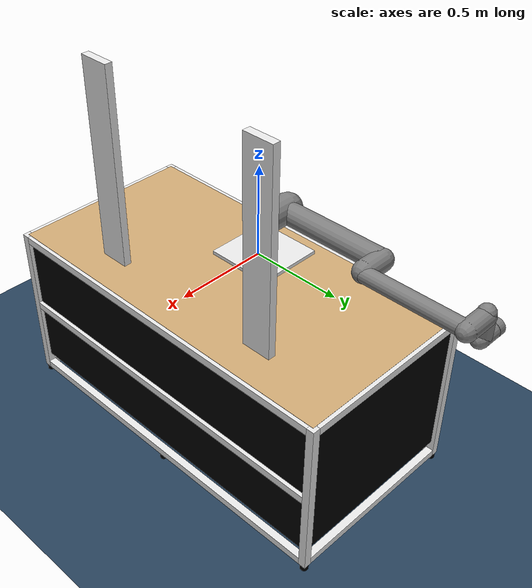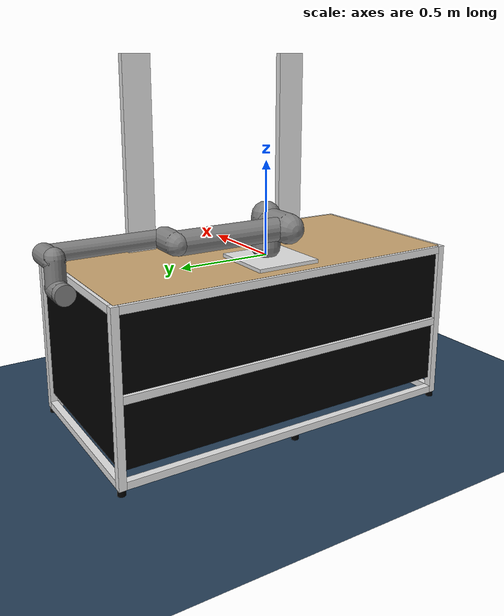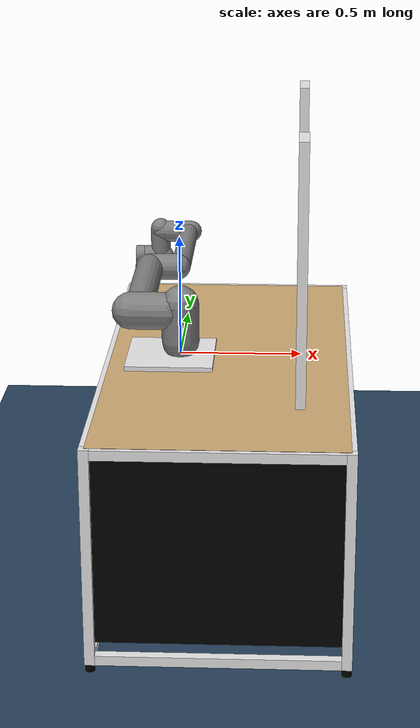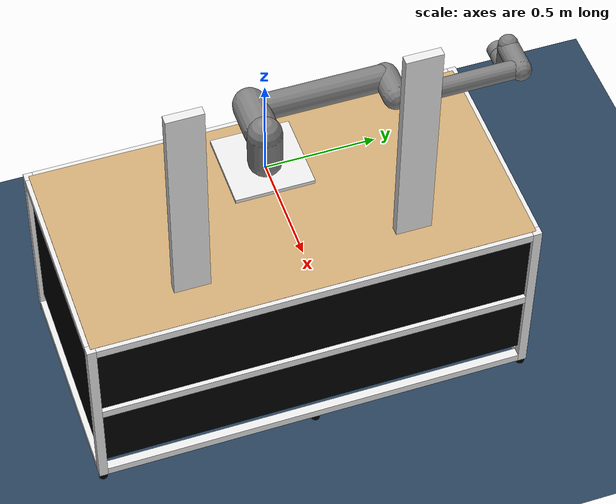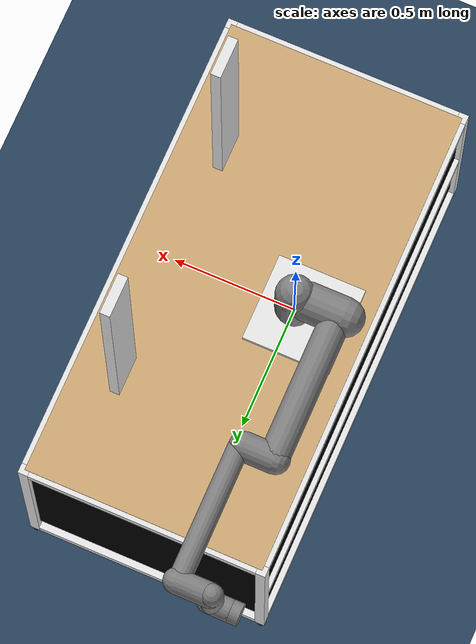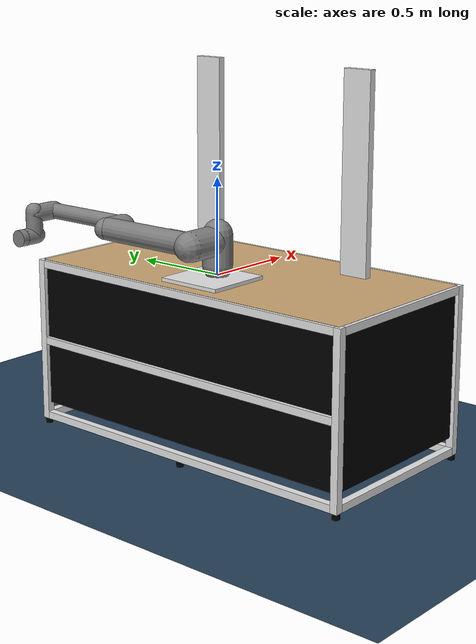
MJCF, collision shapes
<mujoco model="ur10e_sbp_scene">

  <include file="ur10e_limited.xml"/>
  <include file="kit_lab_surrounding.xml"/>

  <statistic center="0.3 0 0.4" extent="0.8"/>

  <visual>
    <headlight diffuse="0.6 0.6 0.6"  ambient="0.1 0.1 0.1" specular="0 0 0"/>
    <rgba haze="0.15 0.25 0.35 1"/>
  </visual>

  <asset>
    <texture type="skybox" builtin="gradient" rgb1="0.3 0.5 0.7" rgb2="0 0 0" width="512"
        height="3072"/>
    <texture type="2d" name="groundplane" builtin="checker" mark="edge" rgb1="0.2 0.3 0.4"
        rgb2="0.1 0.2 0.3" markrgb="0.8 0.8 0.8" width="300" height="300"/>
    <material name="groundplane" texture="groundplane" texuniform="true" texrepeat="5 5"
        reflectance="0.2"/>
  </asset>

  <worldbody>
    <light pos="0 0 1.5" dir="0 0 -1" directional="true"/>
    <geom name="floor" pos="0 0 -0.94" size="0 0 0.05" type="plane" material="groundplane"/>
  </worldbody>

</mujoco>

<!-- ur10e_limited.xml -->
<mujoco model="ur10e">
  <compiler angle="radian" meshdir="assets"/>

  <default>
    <joint axis="0 1 0" range="-3.1415 3.1415" limited="true"/>
    <position ctrlrange="-3.1415 3.1415"/>

    <default class="visual">
      <geom type="mesh" contype="0" conaffinity="0" group="2"/>
    </default>
    <default class="collision">
      <geom type="capsule" group="3"/>
      <default class="eef_collision">
        <geom type="cylinder"/>
      </default>
    </default>
    <site size="0.001" rgba="0.5 0.5 0.5 0.3" group="4"/>

    <!-- Reference:
      https://www.universal-robots.com/articles/ur/robot-care-maintenance/max-joint-torques/ -->
    <default class="size4">
      <joint armature="0.1" damping="350" />
      <position kp="4000" forcerange="-330 330"/>
      <default class="size4_limited">
        <joint range="-3.1415 3.1415"/>
        <position ctrlrange="-3.1415 3.1415"/>
      </default>
    </default>
    <default class="size3">
      <joint armature="0.1" damping="200"/>
      <position kp="3500" forcerange="-150 150"/>
      <default class="size3_limited">
        <joint range="-3.1415 3.1415"/>
        <position ctrlrange="-3.1415 3.1415"/>
      </default>
    </default>
    <default class="size2">
      <joint armature="0.1" damping="30"/>
      <position kp="3200" forcerange="-56 56"/>
      <default class="size2_limited">
        <joint range="-3.1415 3.1415"/>
        <position ctrlrange="-3.1415 3.1415"/>
      </default>
    </default>
  </default>

  <asset>
    <material name="black" specular="0.5" shininess="0.25" rgba="0.033 0.033 0.033 1"/>
    <material name="jointgray" specular="0.5" shininess="0.25" rgba="0.278 0.278 0.278 1"/>
    <material name="linkgray" specular="0.5" shininess="0.25" rgba="0.82 0.82 0.82 1"/>
    <material name="urblue" specular="0.5" shininess="0.25" rgba="0.49 0.678 0.8 1"/>

    <mesh file="base_0.obj"/>
    <mesh file="base_1.obj"/>
    <mesh file="shoulder_0.obj"/>
    <mesh file="shoulder_1.obj"/>
    <mesh file="shoulder_2.obj"/>
    <mesh file="upperarm_0.obj"/>
    <mesh file="upperarm_1.obj"/>
    <mesh file="upperarm_2.obj"/>
    <mesh file="upperarm_3.obj"/>
    <mesh file="forearm_0.obj"/>
    <mesh file="forearm_1.obj"/>
    <mesh file="forearm_2.obj"/>
    <mesh file="forearm_3.obj"/>
    <mesh file="wrist1_0.obj"/>
    <mesh file="wrist1_1.obj"/>
    <mesh file="wrist1_2.obj"/>
    <mesh file="wrist2_0.obj"/>
    <mesh file="wrist2_1.obj"/>
    <mesh file="wrist2_2.obj"/>
    <mesh file="wrist3.obj"/>
  </asset>

  <worldbody>
    <light name="spotlight" mode="targetbodycom" target="wrist_2_link" pos="0 -1 2"/>
    <body name="base" quat="1 0 0 1">
      <inertial mass="4.0" pos="0 0 0" diaginertia="0.0061063308908 0.0061063308908 0.01125"/>
      <geom mesh="base_0" material="black" class="visual"/>
      <geom mesh="base_1" material="jointgray" class="visual"/>
      <body name="shoulder_link" pos="0 0 0.181">
        <inertial pos="0 0 0" mass="7.778" diaginertia="0.0314743 0.0314743 0.0218756"/>
        <joint name="shoulder_pan_joint" class="size4" axis="0 0 1"/>
        <geom mesh="shoulder_0" material="urblue" class="visual"/>
        <geom mesh="shoulder_1" material="black" class="visual"/>
        <geom mesh="shoulder_2" material="jointgray" class="visual"/>
        <geom class="collision" size="0.078 0.08" pos="0 0 -0.05"/>
        <body name="upper_arm_link" pos="0 0.176 0" quat="1 0 1 0">
          <inertial pos="0 0 0.3065" mass="12.93" diaginertia="0.423074 0.423074 0.0363656"/>
          <joint name="shoulder_lift_joint" class="size4" axis="0 1 0"/>
          <geom mesh="upperarm_0" material="black" class="visual"/>
          <geom mesh="upperarm_1" material="jointgray" class="visual"/>
          <geom mesh="upperarm_2" material="urblue" class="visual"/>
          <geom mesh="upperarm_3" material="linkgray" class="visual"/>
          <geom class="collision" pos="0 -0.05 0" quat="1 1 0 0" size="0.078 0.08"/>
          <geom class="collision" size="0.06 0.3" pos="0 0 0.3"/>
          <body name="forearm_link" pos="0 -0.137 0.613">
            <inertial pos="0 0 0.2855" mass="3.87" diaginertia="0.11059 0.11059 0.0108844"/>
            <joint name="elbow_joint" class="size3_limited" axis="0 1 0"/>
            <geom mesh="forearm_0" material="urblue" class="visual"/>
            <geom mesh="forearm_1" material="black" class="visual"/>
            <geom mesh="forearm_2" material="jointgray" class="visual"/>
            <geom mesh="forearm_3" material="linkgray" class="visual"/>
            <geom class="collision" pos="0 0.08 0" quat="1 1 0 0" size="0.058 0.065"/>
            <geom class="collision" size="0.043 0.28" pos="0 0 0.29"/>
            <body name="wrist_1_link" pos="0 0 0.571" quat="1 0 1 0">
              <inertial pos="0 0.135 0" quat="0.5 0.5 -0.5 0.5" mass="1.96" diaginertia="0.0055125 0.00510825 0.00510825"/>
              <joint name="wrist_1_joint" class="size2" axis="0 1 0"/>
              <geom mesh="wrist1_0" material="black" class="visual"/>
              <geom mesh="wrist1_1" material="urblue" class="visual"/>
              <geom mesh="wrist1_2" material="jointgray" class="visual"/>
              <geom class="collision" pos="0 0.06 0" quat="1 1 0 0" size="0.05 0.07"/>
              <body name="wrist_2_link" pos="0 0.135 0">
                <inertial pos="0 0 0.12" quat="0.5 0.5 -0.5 0.5" mass="1.96" diaginertia="0.0055125 0.00510825 0.00510825"/>
                <joint name="wrist_2_joint" axis="0 0 1" class="size2"/>
                <geom mesh="wrist2_0" material="black" class="visual"/>
                <geom mesh="wrist2_1" material="urblue" class="visual"/>
                <geom mesh="wrist2_2" material="jointgray" class="visual"/>
                <geom class="collision" size="0.046 0.065" pos="0 0 0.05"/>
                <geom class="collision" pos="0 0.028 0.12" quat="1 1 0 0" size="0.046 0.043"/>
                <body name="wrist_3_link" pos="0 0 0.12">
                  <inertial pos="0 0.092 0" quat="0 1 -1 0" mass="0.202" diaginertia="0.000204525 0.000144346 0.000144346"/>
                  <joint name="wrist_3_joint" class="size2" axis="0 1 0"/>
                  <geom material="linkgray" mesh="wrist3" class="visual"/>
                  <geom class="eef_collision" pos="0 0.097 0" quat="1 1 0 0" size="0.046 0.02"/>
                  <site name="attachment_site" pos="0 0.1 0" quat="-1 1 0 0"/>
                </body>
              </body>
            </body>
          </body>
        </body>
      </body>
    </body>
  </worldbody>

  <actuator>
    <position forcelimited="true" ctrllimited="true" class="size4" name="shoulder_pan" joint="shoulder_pan_joint"/>
    <position forcelimited="true" ctrllimited="true" class="size4" name="shoulder_lift" joint="shoulder_lift_joint"/>
    <position forcelimited="true" ctrllimited="true" class="size3_limited" name="elbow" joint="elbow_joint"/>
    <position forcelimited="true" ctrllimited="true" class="size2" name="wrist_1" joint="wrist_1_joint"/>
    <position forcelimited="true" ctrllimited="true" class="size2" name="wrist_2" joint="wrist_2_joint"/>
    <position forcelimited="true" ctrllimited="true" class="size2" name="wrist_3" joint="wrist_3_joint"/>
  </actuator>
</mujoco>

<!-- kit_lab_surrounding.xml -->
<mujoco model="PandaFrame">
    <worldbody>
        <body name="table_plane" pos="0.2 0 -0.02">
            <geom type="box" size="0.49 0.98 0.001" rgba="0.8 0.655 0.45 1" solimp="0.999 0.999 0.001"
                  solref="0.002 1"/>

            <body name="panda_ground" pos="-0.24 0 0.01">
            <geom type="box" size="0.18 0.18 0.01" rgba=".9 .9 .9 1"/>
            </body>

            <body name="front_upper" pos="0.49 0 -0.02">
            <geom type="box" size="0.02 0.96 0.02" rgba=".9 .9 .9 1"/>
            </body>
            <body name="front_mid" pos="0.49 0 -0.445">
            <geom type="box" size="0.02 0.96 0.02" rgba=".9 .9 .9 1"/>
            </body>
            <body name="front_lower" pos="0.49 0 -0.87">
            <geom type="box" size="0.02 0.96 0.02" rgba=".9 .9 .9 1"/>
            </body>

            <body name="back_upper" pos="-0.49 0 -0.02">
            <geom type="box" size="0.02 0.96 0.02" rgba=".9 .9 .9 1"/>
            </body>
            <body name="back_mid" pos="-0.49 0 -0.445">
            <geom type="box" size="0.02 0.96 0.02" rgba=".9 .9 .9 1"/>
            </body>
            <body name="back_lower" pos="-0.49 0 -0.87">
            <geom type="box" size="0.02 0.96 0.02" rgba=".9 .9 .9 1"/>
            </body>

            <body name="vert_front_left" pos="0.49 0.98 -0.445">
            <geom type="box" size="0.02 0.02 0.445" rgba=".9 .9 .9 1"/>
            </body>
            <body name="vert_front_right" pos="0.49 -0.98 -0.445">
            <geom type="box" size="0.02 0.02 0.445" rgba=".9 .9 .9 1"/>
            </body>
            <body name="vert_back_left" pos="-0.49 0.98 -0.445">
            <geom type="box" size="0.02 0.02 0.445" rgba=".9 .9 .9 1"/>
            </body>
            <body name="vert_back_right" pos="-0.49 -0.98 -0.445">
            <geom type="box" size="0.02 0.02 0.445" rgba=".9 .9 .9 1"/>
            </body>

            <body name="side_upper_right" pos="0 -0.98 -0.02">
            <geom type="box" size="0.47 0.02 0.02" rgba=".9 .9 .9 1"/>
            </body>
            <body name="side_lower_right" pos="0 -0.98 -0.87">
            <geom type="box" size="0.47 0.02 0.02" rgba=".9 .9 .9 1"/>
            </body>

            <body name="side_upper_left" pos="0 0.98 -0.02">
            <geom type="box" size="0.47 0.02 0.02" rgba=".9 .9 .9 1"/>
            </body>
            <body name="side_lower_left" pos="0 0.98 -0.87">
            <geom type="box" size="0.47 0.02 0.02" rgba=".9 .9 .9 1"/>
            </body>

            <body name="foot_front_left" pos="0.49 0.98 -0.9">
            <geom type="cylinder" size="0.02 0.02 0.04" rgba="0 0 0 1"/>
            </body>
            <body name="foot_front_mid" pos="0.49 0 -0.9">
            <geom type="cylinder" size="0.02 0.02 0.04" rgba="0 0 0 1"/>
            </body>
            <body name="foot_front_right" pos="0.49 -0.98 -0.9">
            <geom type="cylinder" size="0.02 0.02 0.04" rgba="0 0 0 1"/>
            </body>

            <body name="foot_back_left" pos="-0.49 0.98 -0.9">
            <geom type="cylinder" size="0.02 0.02 0.04" rgba="0 0 0 1"/>
            </body>
            <body name="foot_back_mid" pos="-0.49 0 -0.9">
            <geom type="cylinder" size="0.02 0.02 0.04" rgba="0 0 0 1"/>
            </body>
            <body name="foot_back_right" pos="-0.49 -0.98 -0.9">
            <geom type="cylinder" size="0.02 0.02 0.04" rgba="0 0 0 1"/>
            </body>

            <!-- Obstacles -->
            <body name="top_obstacle_left" pos="0.3 0.49 0.4">
            <geom type="box" size="0.02 0.08 0.65" rgba=".9 .9 .9 1"/>
            </body>
            <body name="top_obstacle_right" pos="0.3 -0.49 0.4">
            <geom type="box" size="0.02 0.08 0.65" rgba=".9 .9 .9 1"/>
            </body>
            <!-- End Obstacles -->

            <body name="support_body" pos="0 0 -0.4" >
            <geom type="box" size="0.49 0.98 0.4" rgba="0 0 0 0" solimp="0.999  0.999 0.001" solref="0.002 1"/>
            </body>
        </body>
    </worldbody>
</mujoco>
